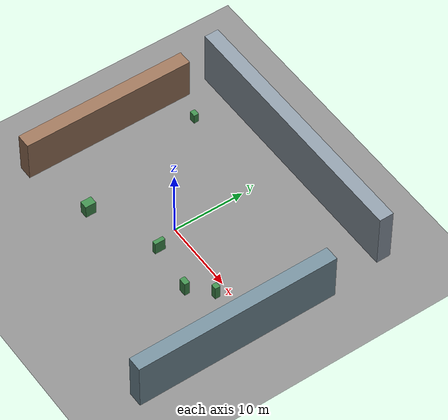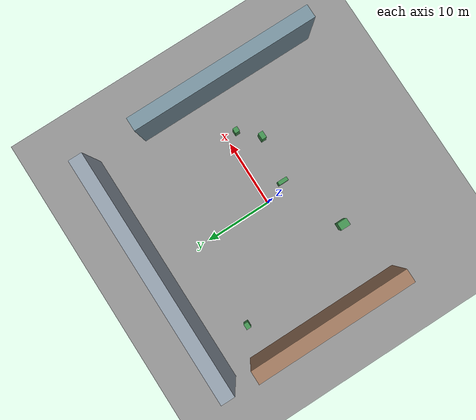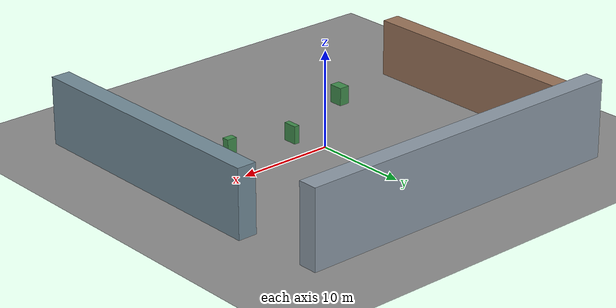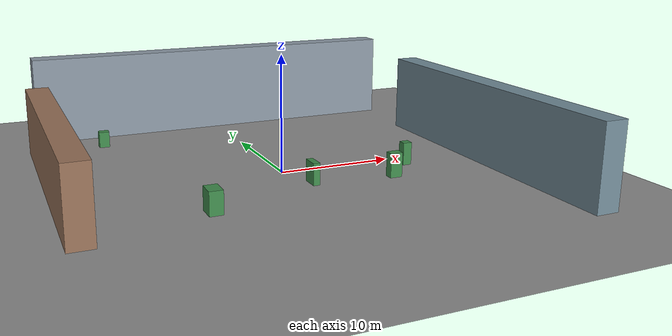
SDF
<?xml version="1.0"?>
<sdf version="1.6">
  <world name="outdoor_dark_medium_1">
    <physics name="default_physics" type="ode">
      <real_time_update_rate>1000</real_time_update_rate>
      <max_step_size>0.001</max_step_size>
    </physics>
    <scene>
      <ambient>0.01 0.01 0.01 1</ambient>
      <background>0.08 0.09 0.12 1</background>
      <shadows>true</shadows>
    </scene>
    <light name="sun" type="directional">
      <cast_shadows>true</cast_shadows>
      <pose>0 0 20 0 0 0</pose>
      <diffuse>0.04 0.04 0.04 1.0</diffuse>
      <specular>0.04 0.04 0.04 1.0</specular>
      <direction>-0.5 0.2 -1</direction>
    </light>
    <model name="ground_plane">
      <static>true</static>
      <link name="link">
        <collision name="collision"><geometry><plane><normal>0 0 1</normal><size>100 100</size></plane></geometry></collision>
        <visual name="visual">
          <geometry><plane><normal>0 0 1</normal><size>100 100</size></plane></geometry>
          <material><ambient>0.35 0.35 0.35 1</ambient><diffuse>0.55 0.55 0.55 1</diffuse></material>
        </visual>
      </link>
    </model>

    <model name="building_north">
      <static>true</static>
      <pose>0.0000 18.0000 4.0000 0 0 0</pose>
      <link name="link">
        <collision name="collision"><geometry><box><size>36 2 8</size></box></geometry></collision>
        <visual name="visual">
          <geometry><box><size>36 2 8</size></box></geometry>
          <material><ambient>0.55 0.60 0.65 1</ambient><diffuse>0.55 0.60 0.65 1</diffuse></material>
        </visual>
      </link>
    </model>

    <model name="building_west">
      <static>true</static>
      <pose>-18.0000 2.0000 3.0000 0 0 0</pose>
      <link name="link">
        <collision name="collision"><geometry><box><size>2 24 6</size></box></geometry></collision>
        <visual name="visual">
          <geometry><box><size>2 24 6</size></box></geometry>
          <material><ambient>0.60 0.45 0.35 1</ambient><diffuse>0.60 0.45 0.35 1</diffuse></material>
        </visual>
      </link>
    </model>

    <model name="facade_east">
      <static>true</static>
      <pose>18.0000 -4.0000 3.5000 0 0 0</pose>
      <link name="link">
        <collision name="collision"><geometry><box><size>2 28 7</size></box></geometry></collision>
        <visual name="visual">
          <geometry><box><size>2 28 7</size></box></geometry>
          <material><ambient>0.45 0.55 0.60 1</ambient><diffuse>0.45 0.55 0.60 1</diffuse></material>
        </visual>
      </link>
    </model>

    <model name="outdoor_feature_0">
      <static>true</static>
      <pose>-8.2339 -7.0889 1.0985 0 0 0</pose>
      <link name="link">
        <collision name="collision"><geometry><box><size>1.1085348417611656 1.495485164897746 1.8965798562882505</size></box></geometry></collision>
        <visual name="visual">
          <geometry><box><size>1.1085348417611656 1.495485164897746 1.8965798562882505</size></box></geometry>
          <material><ambient>0.25 0.55 0.30 1</ambient><diffuse>0.25 0.55 0.30 1</diffuse></material>
        </visual>
      </link>
    </model>

    <model name="outdoor_feature_1">
      <static>true</static>
      <pose>10.9806 -1.6705 0.6287 0 0 0</pose>
      <link name="link">
        <collision name="collision"><geometry><box><size>0.7802876691668907 0.72932270767082 2.590772040619016</size></box></geometry></collision>
        <visual name="visual">
          <geometry><box><size>0.7802876691668907 0.72932270767082 2.590772040619016</size></box></geometry>
          <material><ambient>0.25 0.55 0.30 1</ambient><diffuse>0.25 0.55 0.30 1</diffuse></material>
        </visual>
      </link>
    </model>

    <model name="outdoor_feature_2">
      <static>true</static>
      <pose>-12.6849 11.6910 1.2948 0 0 0</pose>
      <link name="link">
        <collision name="collision"><geometry><box><size>0.8888943828319094 0.6997404139274458 1.4126114080983578</size></box></geometry></collision>
        <visual name="visual">
          <geometry><box><size>0.8888943828319094 0.6997404139274458 1.4126114080983578</size></box></geometry>
          <material><ambient>0.25 0.55 0.30 1</ambient><diffuse>0.25 0.55 0.30 1</diffuse></material>
        </visual>
      </link>
    </model>

    <model name="outdoor_feature_3">
      <static>true</static>
      <pose>1.3870 -3.2981 0.8252 0 0 0</pose>
      <link name="link">
        <collision name="collision"><geometry><box><size>0.569828119782786 1.4776400125171554 1.9463550052736078</size></box></geometry></collision>
        <visual name="visual">
          <geometry><box><size>0.569828119782786 1.4776400125171554 1.9463550052736078</size></box></geometry>
          <material><ambient>0.25 0.55 0.30 1</ambient><diffuse>0.25 0.55 0.30 1</diffuse></material>
        </visual>
      </link>
    </model>

    <model name="outdoor_feature_4">
      <static>true</static>
      <pose>8.3201 -4.3390 0.7854 0 0 0</pose>
      <link name="link">
        <collision name="collision"><geometry><box><size>1.062107243401774 0.7462165515935635 2.5041964923145263</size></box></geometry></collision>
        <visual name="visual">
          <geometry><box><size>1.062107243401774 0.7462165515935635 2.5041964923145263</size></box></geometry>
          <material><ambient>0.25 0.55 0.30 1</ambient><diffuse>0.25 0.55 0.30 1</diffuse></material>
        </visual>
      </link>
    </model>
  </world>
</sdf>
